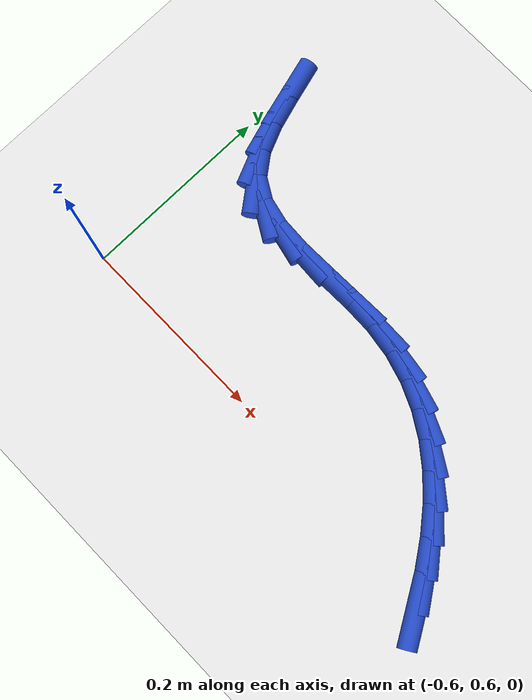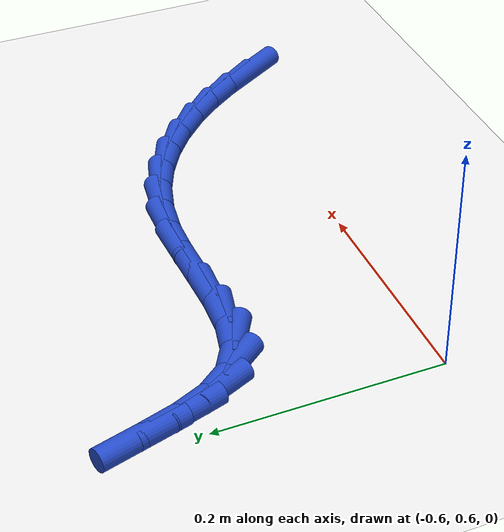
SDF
<sdf version="1.6">
 <world name="default">
  <model name="ground_plane">
   <static>1</static>
   <link name="link">
    <collision name="collision">
     <geometry><plane><normal>0 0 1</normal><size>100 100</size></plane></geometry>
     <surface><friction><ode><mu>100</mu><mu2>50</mu2></ode></friction></surface>
    </collision>
    <visual name="visual">
     <cast_shadows>0</cast_shadows>
     <geometry><plane><normal>0 0 1</normal><size>100 100</size></plane></geometry>
     <material>
      <script><uri>file://media/materials/scripts/gazebo.material</uri><name>Gazebo/WhiteGlow</name></script>
     </material>
    </visual>
   </link>
  </model>
  <model name="line">
   <link name="link_18">
    <pose>-0.14406753564404637 0.5835154028642978 0.01 0 1.57 -1.0230003663762337</pose>
    <collision name="collision">
     <geometry><cylinder><radius>0.01</radius><length>0.08</length></cylinder></geometry>
    </collision>
    <visual name="visual">
     <material>
      <script><name>Gazebo/Blue</name><uri>file://media/materials/scripts/gazebo.material</uri></script>
     </material>
     <geometry><cylinder><radius>0.01</radius><length>0.08</length></cylinder></geometry>
    </visual>
   </link>
   <link name="link_19">
    <pose>-0.16160230473322573 0.612257308858842 0.01 0 1.57 -0.9514858288263982</pose>
    <collision name="collision">
     <geometry><cylinder><radius>0.01</radius><length>0.08</length></cylinder></geometry>
    </collision>
    <visual name="visual">
     <material>
      <script><name>Gazebo/Blue</name><uri>file://media/materials/scripts/gazebo.material</uri></script>
     </material>
     <geometry><cylinder><radius>0.01</radius><length>0.08</length></cylinder></geometry>
    </visual>
   </link>
   <link name="link_20">
    <pose>-0.18066240587631235 0.6389944959387651 0.01 0 1.57 -0.8687640490428645</pose>
    <collision name="collision">
     <geometry><cylinder><radius>0.01</radius><length>0.08</length></cylinder></geometry>
    </collision>
    <visual name="visual">
     <material>
      <script><name>Gazebo/Blue</name><uri>file://media/materials/scripts/gazebo.material</uri></script>
     </material>
     <geometry><cylinder><radius>0.01</radius><length>0.08</length></cylinder></geometry>
    </visual>
   </link>
   <link name="link_21">
    <pose>-0.20133976404296652 0.6634425099636144 0.01 0 1.57 -0.7738274505981849</pose>
    <collision name="collision">
     <geometry><cylinder><radius>0.01</radius><length>0.08</length></cylinder></geometry>
    </collision>
    <visual name="visual">
     <material>
      <script><name>Gazebo/Blue</name><uri>file://media/materials/scripts/gazebo.material</uri></script>
     </material>
     <geometry><cylinder><radius>0.01</radius><length>0.08</length></cylinder></geometry>
    </visual>
   </link>
   <link name="link_22">
    <pose>-0.22372630420284859 0.6853168967929372 0.01 0 1.57 -0.6662689026356294</pose>
    <collision name="collision">
     <geometry><cylinder><radius>0.01</radius><length>0.08</length></cylinder></geometry>
    </collision>
    <visual name="visual">
     <material>
      <script><name>Gazebo/Blue</name><uri>file://media/materials/scripts/gazebo.material</uri></script>
     </material>
     <geometry><cylinder><radius>0.01</radius><length>0.08</length></cylinder></geometry>
    </visual>
   </link>
   <link name="link_23">
    <pose>-0.24791395132561878 0.7043332022862802 0.01 0 1.57 -0.5467489469002796</pose>
    <collision name="collision">
     <geometry><cylinder><radius>0.01</radius><length>0.08</length></cylinder></geometry>
    </collision>
    <visual name="visual">
     <material>
      <script><name>Gazebo/Blue</name><uri>file://media/materials/scripts/gazebo.material</uri></script>
     </material>
     <geometry><cylinder><radius>0.01</radius><length>0.08</length></cylinder></geometry>
    </visual>
   </link>
   <link name="link_24">
    <pose>-0.27399463038093747 0.7202069723031908 0.01 0 1.57 -0.41742559322224176</pose>
    <collision name="collision">
     <geometry><cylinder><radius>0.01</radius><length>0.08</length></cylinder></geometry>
    </collision>
    <visual name="visual">
     <material>
      <script><name>Gazebo/Blue</name><uri>file://media/materials/scripts/gazebo.material</uri></script>
     </material>
     <geometry><cylinder><radius>0.01</radius><length>0.08</length></cylinder></geometry>
    </visual>
   </link>
   <link name="link_25">
    <pose>-0.3020602663384649 0.7326537527032158 0.01 0 1.57 -0.282073997731524</pose>
    <collision name="collision">
     <geometry><cylinder><radius>0.01</radius><length>0.08</length></cylinder></geometry>
    </collision>
    <visual name="visual">
     <material>
      <script><name>Gazebo/Blue</name><uri>file://media/materials/scripts/gazebo.material</uri></script>
     </material>
     <geometry><cylinder><radius>0.01</radius><length>0.08</length></cylinder></geometry>
    </visual>
   </link>
   <link name="link_26">
    <pose>-0.3322027841678616 0.7413890893459028 0.01 0 1.57 -0.14564184642157518</pose>
    <collision name="collision">
     <geometry><cylinder><radius>0.01</radius><length>0.08</length></cylinder></geometry>
    </collision>
    <visual name="visual">
     <material>
      <script><name>Gazebo/Blue</name><uri>file://media/materials/scripts/gazebo.material</uri></script>
     </material>
     <geometry><cylinder><radius>0.01</radius><length>0.08</length></cylinder></geometry>
    </visual>
   </link>
   <link name="link_27">
    <pose>-0.3645141088387877 0.7461285280907985 0.01 0 1.57 -0.02538423099784254</pose>
    <collision name="collision">
     <geometry><cylinder><radius>0.01</radius><length>0.08</length></cylinder></geometry>
    </collision>
    <visual name="visual">
     <material>
      <script><name>Gazebo/Blue</name><uri>file://media/materials/scripts/gazebo.material</uri></script>
     </material>
     <geometry><cylinder><radius>0.01</radius><length>0.08</length></cylinder></geometry>
    </visual>
   </link>
   <link name="link_28">
    <pose>-0.3988312168925125 0.7469998286403554 0.01 0 1.57 0.032893687089779265</pose>
    <collision name="collision">
     <geometry><cylinder><radius>0.01</radius><length>0.08</length></cylinder></geometry>
    </collision>
    <visual name="visual">
     <material>
      <script><name>Gazebo/Blue</name><uri>file://media/materials/scripts/gazebo.material</uri></script>
     </material>
     <geometry><cylinder><radius>0.01</radius><length>0.08</length></cylinder></geometry>
    </visual>
   </link>
   <link name="link_29">
    <pose>-0.4339309369504094 0.7458448528425698 0.01 0 1.57 0.02599234547473987</pose>
    <collision name="collision">
     <geometry><cylinder><radius>0.01</radius><length>0.08</length></cylinder></geometry>
    </collision>
    <visual name="visual">
     <material>
      <script><name>Gazebo/Blue</name><uri>file://media/materials/scripts/gazebo.material</uri></script>
     </material>
     <geometry><cylinder><radius>0.01</radius><length>0.08</length></cylinder></geometry>
    </visual>
   </link>
   <link name="link_30">
    <pose>-0.46831457607238053 0.744950940097012 0.01 0 1.57 -0.051386150759012664</pose>
    <collision name="collision">
     <geometry><cylinder><radius>0.01</radius><length>0.08</length></cylinder></geometry>
    </collision>
    <visual name="visual">
     <material>
      <script><name>Gazebo/Blue</name><uri>file://media/materials/scripts/gazebo.material</uri></script>
     </material>
     <geometry><cylinder><radius>0.01</radius><length>0.08</length></cylinder></geometry>
    </visual>
   </link>
   <link name="link_31">
    <pose>-0.5004834407446201 0.7466054307308524 0.01 0 1.57 -0.22424834764743154</pose>
    <collision name="collision">
     <geometry><cylinder><radius>0.01</radius><length>0.08</length></cylinder></geometry>
    </collision>
    <visual name="visual">
     <material>
      <script><name>Gazebo/Blue</name><uri>file://media/materials/scripts/gazebo.material</uri></script>
     </material>
     <geometry><cylinder><radius>0.01</radius><length>0.08</length></cylinder></geometry>
    </visual>
   </link>
   <link name="link_32">
    <pose>-0.5289388374533226 0.753095665071262 0.01 0 1.57 -0.5298303796738193</pose>
    <collision name="collision">
     <geometry><cylinder><radius>0.01</radius><length>0.08</length></cylinder></geometry>
    </collision>
    <visual name="visual">
     <material>
      <script><name>Gazebo/Blue</name><uri>file://media/materials/scripts/gazebo.material</uri></script>
     </material>
     <geometry><cylinder><radius>0.01</radius><length>0.08</length></cylinder></geometry>
    </visual>
   </link>
   <link name="link_33">
    <pose>-0.5521820760691492 0.7667089785405428 0.01 0 1.57 -0.911510302079967</pose>
    <collision name="collision">
     <geometry><cylinder><radius>0.01</radius><length>0.08</length></cylinder></geometry>
    </collision>
    <visual name="visual">
     <material>
      <script><name>Gazebo/Blue</name><uri>file://media/materials/scripts/gazebo.material</uri></script>
     </material>
     <geometry><cylinder><radius>0.01</radius><length>0.08</length></cylinder></geometry>
    </visual>
   </link>
   <link name="link_34">
    <pose>-0.569331542789127 0.7888384215749312 0.01 0 1.57 -1.158998484451315</pose>
    <collision name="collision">
     <geometry><cylinder><radius>0.01</radius><length>0.08</length></cylinder></geometry>
    </collision>
    <visual name="visual">
     <material>
      <script><name>Gazebo/Blue</name><uri>file://media/materials/scripts/gazebo.material</uri></script>
     </material>
     <geometry><cylinder><radius>0.01</radius><length>0.08</length></cylinder></geometry>
    </visual>
   </link>
   <link name="link_35">
    <pose>-0.5818445615694151 0.8174873878826943 0.01 0 1.57 -1.2743221226054489</pose>
    <collision name="collision">
     <geometry><cylinder><radius>0.01</radius><length>0.08</length></cylinder></geometry>
    </collision>
    <visual name="visual">
     <material>
      <script><name>Gazebo/Blue</name><uri>file://media/materials/scripts/gazebo.material</uri></script>
     </material>
     <geometry><cylinder><radius>0.01</radius><length>0.08</length></cylinder></geometry>
    </visual>
   </link>
   <link name="link_36">
    <pose>-0.591732527082638 0.8498562957510959 0.01 0 1.57 -1.2990886302181817</pose>
    <collision name="collision">
     <geometry><cylinder><radius>0.01</radius><length>0.08</length></cylinder></geometry>
    </collision>
    <visual name="visual">
     <material>
      <script><name>Gazebo/Blue</name><uri>file://media/materials/scripts/gazebo.material</uri></script>
     </material>
     <geometry><cylinder><radius>0.01</radius><length>0.08</length></cylinder></geometry>
    </visual>
   </link>
  </model>
 </world>
</sdf>
